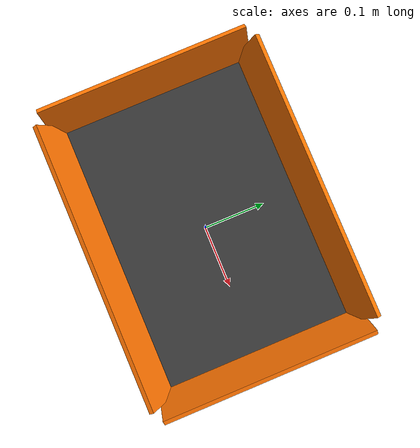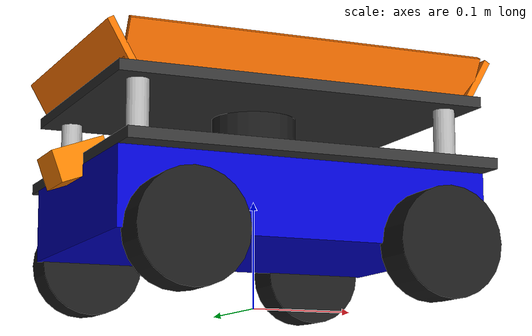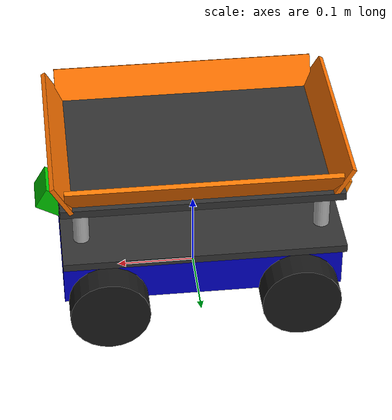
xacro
<?xml version="1.0"?>
<robot name="differential_drive_robot"
       xmlns:xacro="http://www.ros.org/wiki/xacro">

  <!-- ==================== PROPERTIES ==================== -->
  <xacro:property name="base_length" value="0.35"/>
  <xacro:property name="base_width"  value="0.25"/>
  <xacro:property name="base_height" value="0.07"/>
  <xacro:property name="base_mass"   value="5.0"/>

  <xacro:property name="wheel_radius" value="0.05"/>
  <xacro:property name="wheel_width"  value="0.04"/>
  <xacro:property name="wheel_mass"   value="0.5"/>

  <xacro:property name="caster_radius" value="0.025"/>
  <xacro:property name="caster_mass"   value="0.1"/>

  <xacro:property name="lidar_radius" value="0.04"/>
  <xacro:property name="lidar_height" value="0.05"/>
  <xacro:property name="lidar_mass"   value="0.2"/>

  <!-- Standoffs: 4 cylinders at cover_plate corners holding up standoff_floor -->
  <xacro:property name="standoff_height" value="0.052"/>
  <xacro:property name="standoff_radius" value="0.01"/>
  <xacro:property name="standoff_mass"   value="0.075"/>

  <!-- Standoff floor: same footprint as base, thin plate above standoffs -->
  <xacro:property name="standoff_floor_length" value="0.35"/>
  <xacro:property name="standoff_floor_width"  value="0.25"/>
  <xacro:property name="standoff_floor_height" value="0.01"/>
  <xacro:property name="standoff_floor_mass"   value="0.3"/>

  <xacro:property name="tray_wall_h"    value="0.045"/>
  <xacro:property name="tray_wall_t"    value="0.006"/>
  <xacro:property name="tray_wall_mass" value="0.02"/>

  <!-- ==================== INERTIA MACROS ==================== -->
  <xacro:macro name="box_inertia" params="m x y z">
    <inertial>
      <origin xyz="0 0 0" rpy="0 0 0"/>
      <mass value="${m}"/>
      <inertia
        ixx="${(1/12)*m*(y*y+z*z)}"
        ixy="0" ixz="0"
        iyy="${(1/12)*m*(x*x+z*z)}"
        iyz="0"
        izz="${(1/12)*m*(x*x+y*y)}"/>
    </inertial>
  </xacro:macro>

  <xacro:macro name="cylinder_inertia" params="m r h">
    <inertial>
      <origin xyz="0 0 0" rpy="0 0 0"/>
      <mass value="${m}"/>
      <inertia
        ixx="${(1/12)*m*(3*r*r+h*h)}"
        ixy="0" ixz="0"
        iyy="${(1/12)*m*(3*r*r+h*h)}"
        iyz="0"
        izz="${(1/2)*m*r*r}"/>
    </inertial>
  </xacro:macro>

  <xacro:macro name="sphere_inertia" params="m r">
    <inertial>
      <origin xyz="0 0 0" rpy="0 0 0"/>
      <mass value="${m}"/>
      <inertia
        ixx="${(2/5)*m*r*r}"
        ixy="0" ixz="0"
        iyy="${(2/5)*m*r*r}"
        iyz="0"
        izz="${(2/5)*m*r*r}"/>
    </inertial>
  </xacro:macro>

  <!-- ==================== WHEEL MACRO ==================== -->
  <xacro:macro name="wheel" params="name x_offset y_offset">
    <link name="${name}_wheel">
      <visual>
        <origin xyz="0 0 0" rpy="0 0 0"/>
        <geometry>
          <cylinder radius="${wheel_radius}" length="${wheel_width}"/>
        </geometry>
        <material name="black">
          <color rgba="0.1 0.1 0.1 1"/>
        </material>
      </visual>
      <collision>
        <origin xyz="0 0 0" rpy="0 0 0"/>
        <geometry>
          <cylinder radius="${wheel_radius}" length="${wheel_width}"/>
        </geometry>
      </collision>
      <xacro:cylinder_inertia m="${wheel_mass}"
                              r="${wheel_radius}"
                              h="${wheel_width}"/>
    </link>

    <joint name="${name}_wheel_joint" type="continuous">
      <parent link="base_link"/>
      <child link="${name}_wheel"/>
      <origin xyz="${x_offset} ${y_offset} -0.035" rpy="-1.5707 0 0"/>
      <axis xyz="0 0 1"/>
      <dynamics damping="0.001" friction="0.0"/>
    </joint>

    <gazebo reference="${name}_wheel">
      <mu1>1.1</mu1>
      <mu2>0.05</mu2>
      <fdir1>1 0 0</fdir1>
      <kp>100000.0</kp>
      <kd>10.0</kd>
    </gazebo>
  </xacro:macro>

  <xacro:macro name="standoff" params="name x_offset y_offset">
    <link name="${name}_standoff">
      <visual>
        <origin xyz="0 0 0" rpy="0 0 0"/>
        <geometry>
          <cylinder radius="${standoff_radius}" length="${standoff_height}"/>
        </geometry>
        <material name="silver">
          <color rgba="0.7 0.7 0.7 1"/>
        </material>
      </visual>
      <collision>
        <origin xyz="0 0 0" rpy="0 0 0"/>
        <geometry>
          <cylinder radius="${standoff_radius}" length="${standoff_height}"/>
        </geometry>
      </collision>
      <xacro:cylinder_inertia m="${standoff_mass}"
                              r="${standoff_radius}"
                              h="${standoff_height}"/>
    </link>

    <!-- Parent: cover_plate. z offset = plate_half_h + standoff_half_h -->
    <joint name="${name}_standoff_joint" type="fixed">
      <parent link="cover_plate"/>
      <child link="${name}_standoff"/>
      <origin xyz="${x_offset} ${y_offset} ${0.005 + standoff_height/2}" rpy="0 0 0"/>
    </joint>
  </xacro:macro>

  <xacro:macro name="tray_wall" params="name wx wy x_off y_off rpy">
    <link name="tray_wall_${name}">
      <visual>
        <origin xyz="0 0 0" rpy="0 0 0"/>
        <geometry>
          <box size="${wx} ${wy} ${tray_wall_h}"/>
        </geometry>
        <material name="orange_tray">
          <color rgba="1.0 0.45 0.0 1"/>
        </material>
      </visual>
      <collision>
        <origin xyz="0 0 0" rpy="0 0 0"/>
        <geometry>
          <box size="${wx} ${wy} ${tray_wall_h}"/>
        </geometry>
      </collision>
      <xacro:box_inertia m="${tray_wall_mass}" x="${wx}" y="${wy}" z="${tray_wall_h}"/>
    </link>
    <joint name="tray_wall_${name}_joint" type="fixed">
      <parent link="standoff_floor"/>
      <child  link="tray_wall_${name}"/>
      <!-- z: sfp_half_h + wall_half_h = 0.005 + 0.015 = 0.020 -->
      <origin xyz="${x_off} ${y_off} 0.020" rpy="${rpy}"/>
    </joint>
  </xacro:macro>

  <!-- ==================== BASE FOOTPRINT ==================== -->

  <link name="base_footprint"/>

  <joint name="base_footprint_joint" type="fixed">
    <parent link="base_footprint"/>
    <child link="base_link"/>
    <origin xyz="0 0 0.085" rpy="0 0 0"/>
  </joint>

  <!-- ==================== BASE LINK ==================== -->
  <link name="base_link">
    <visual>
      <origin xyz="0 0 0" rpy="0 0 0"/>
      <geometry>
        <box size="${base_length} ${base_width} ${base_height}"/>
      </geometry>
      <material name="blue">
        <color rgba="0 0 0.8 1"/>
      </material>
    </visual>
    <collision>
      <origin xyz="0 0 0" rpy="0 0 0"/>
      <geometry>
        <box size="${base_length} ${base_width} ${base_height}"/>
      </geometry>
    </collision>
    <xacro:box_inertia m="${base_mass}"
                       x="${base_length}"
                       y="${base_width}"
                       z="${base_height}"/>
  </link>

  <!-- ==================== WHEELS ==================== -->
  <xacro:wheel name="front_left"  x_offset="0.12"  y_offset="0.14"/>
  <xacro:wheel name="front_right" x_offset="0.12"  y_offset="-0.14"/>
  <xacro:wheel name="rear_left"   x_offset="-0.12" y_offset="0.14"/>
  <xacro:wheel name="rear_right"  x_offset="-0.12" y_offset="-0.14"/>

  <link name="cover_plate">
    <visual>
      <origin xyz="0 0 0" rpy="0 0 0"/>
      <geometry>
        <box size="0.35 0.30 0.01"/>
      </geometry>
      <material name="dark_grey">
        <color rgba="0.2 0.2 0.2 1"/>
      </material>
    </visual>
    <collision>
      <origin xyz="0 0 0" rpy="0 0 0"/>
      <geometry>
        <box size="0.35 0.30 0.01"/>
      </geometry>
    </collision>
    <xacro:box_inertia m="0.3" x="0.35" y="0.30" z="0.01"/>
  </link>

  <joint name="cover_plate_joint" type="fixed">
    <parent link="base_link"/>
    <child link="cover_plate"/>
    <!-- base_height/2 + cover_plate_height/2 = 0.035 + 0.005 = 0.040 -->
    <origin xyz="0 0 0.040" rpy="0 0 0"/>
  </joint>

  <xacro:standoff name="front_left"  x_offset=" 0.150" y_offset=" 0.100"/>
  <xacro:standoff name="front_right" x_offset=" 0.150" y_offset="-0.100"/>
  <xacro:standoff name="rear_left"   x_offset="-0.150" y_offset=" 0.100"/>
  <xacro:standoff name="rear_right"  x_offset="-0.150" y_offset="-0.100"/>

  <link name="standoff_floor">
    <visual>
      <origin xyz="0 0 0" rpy="0 0 0"/>
      <geometry>
        <box size="${standoff_floor_length} ${standoff_floor_width} ${standoff_floor_height}"/>
      </geometry>
      <material name="dark_grey">
        <color rgba="0.2 0.2 0.2 1"/>
      </material>
    </visual>
    <collision>
      <origin xyz="0 0 0" rpy="0 0 0"/>
      <geometry>
        <box size="${standoff_floor_length} ${standoff_floor_width} ${standoff_floor_height}"/>
      </geometry>
    </collision>
    <xacro:box_inertia m="${standoff_floor_mass}"
                       x="${standoff_floor_length}"
                       y="${standoff_floor_width}"
                       z="${standoff_floor_height}"/>
  </link>

  <joint name="standoff_floor_joint" type="fixed">
    <parent link="cover_plate"/>
    <child link="standoff_floor"/>
    <!-- cover_plate_half_h + standoff_height + floor_half_h
         = 0.005 + 0.052 + 0.005 = 0.062 -->
    <origin xyz="0 0 0.062" rpy="0 0 0"/>
  </joint>

  <!-- Front wall: spans full Y width, sits at +X edge, top tilts outward (+X) -->
  <xacro:tray_wall name="front"
    wx="${tray_wall_t}"
    wy="${standoff_floor_width}"
    x_off="${standoff_floor_length/2 - tray_wall_t/2}"
    y_off="0"
    rpy="0 0.5236 0"/>

  <!-- Rear wall: spans full Y width, sits at -X edge, top tilts outward (-X) -->
  <xacro:tray_wall name="rear"
    wx="${tray_wall_t}"
    wy="${standoff_floor_width}"
    x_off="${-(standoff_floor_length/2 - tray_wall_t/2)}"
    y_off="0"
    rpy="0 -0.5236 0"/>

  <!-- Left wall: inner X span, sits at +Y edge, top tilts outward (+Y) -->
  <xacro:tray_wall name="left"
    wx="${standoff_floor_length - 2*tray_wall_t}"
    wy="${tray_wall_t}"
    x_off="0"
    y_off="${standoff_floor_width/2 - tray_wall_t/2}"
    rpy="-0.5236 0 0"/>

  <!-- Right wall: inner X span, sits at -Y edge, top tilts outward (-Y) -->
  <xacro:tray_wall name="right"
    wx="${standoff_floor_length - 2*tray_wall_t}"
    wy="${tray_wall_t}"
    x_off="0"
    y_off="${-(standoff_floor_width/2 - tray_wall_t/2)}"
    rpy="0.5236 0 0"/>

  <link name="lidar_link">
    <visual>
      <origin xyz="0 0 0" rpy="0 0 0"/>
      <geometry>
        <cylinder radius="${lidar_radius}" length="${lidar_height}"/>
      </geometry>
      <material name="black">
        <color rgba="0.1 0.1 0.1 1"/>
      </material>
    </visual>
    <collision>
      <origin xyz="0 0 0" rpy="0 0 0"/>
      <geometry>
        <cylinder radius="${lidar_radius}" length="${lidar_height}"/>
      </geometry>
    </collision>
    <xacro:cylinder_inertia m="${lidar_mass}"
                            r="${lidar_radius}"
                            h="${lidar_height}"/>
  </link>

  <joint name="lidar_joint" type="fixed">
    <parent link="cover_plate"/>
    <child link="lidar_link"/>
    <!-- cover_plate_half_h + lidar_half_h = 0.005 + 0.025 = 0.030 -->
    <origin xyz="0.0 0 0.030" rpy="0 0 0"/>
  </joint>

  <!-- ==================== CAMERA FRONT ====================
       Faces forward (+X), tilted down 30° to see floor/markers on approach.
       Topic: /camera/front/image_raw
  -->
  <link name="camera_link_1">
    <visual>
      <origin xyz="0 0 0" rpy="0 0 0"/>
      <geometry>
        <box size="0.05 0.05 0.03"/>
      </geometry>
      <material name="green">
        <color rgba="0 0.8 0 1"/>
      </material>
    </visual>
    <collision>
      <origin xyz="0 0 0" rpy="0 0 0"/>
      <geometry>
        <box size="0.05 0.05 0.03"/>
      </geometry>
    </collision>
    <xacro:box_inertia m="0.1" x="0.05" y="0.05" z="0.03"/>
  </link>

  <joint name="camera_joint_1" type="fixed">
    <parent link="base_link"/>
    <child link="camera_link_1"/>
    <!-- Front face of robot (base_length/2=0.175), same height as cover_plate top -->
    <origin xyz="0.175 0 0.04" rpy="0 -0.523 0"/>
  </joint>

  <link name="camera_link_2">
    <visual>
      <origin xyz="0 0 0" rpy="0 0 0"/>
      <geometry>
        <box size="0.05 0.05 0.03"/>
      </geometry>
      <material name="orange">
        <color rgba="1.0 0.5 0.0 1"/>
      </material>
    </visual>
    <collision>
      <origin xyz="0 0 0" rpy="0 0 0"/>
      <geometry>
        <box size="0.05 0.05 0.03"/>
      </geometry>
    </collision>
    <xacro:box_inertia m="0.1" x="0.05" y="0.05" z="0.03"/>
  </link>

  <joint name="camera_joint_2" type="fixed">
    <parent link="base_link"/>
    <child link="camera_link_2"/>
    <!-- Rear face of robot (x=-0.175), yaw=π faces backward, pitch=+0.349 tilts down ~20° -->
    <origin xyz="-0.175 0 0.04" rpy="0 0.349 3.14159"/>
  </joint>

<gazebo>
  <plugin filename="gz-sim-diff-drive-system" name="gz::sim::systems::DiffDrive">
    <left_joint>front_left_wheel_joint</left_joint>
    <left_joint>rear_left_wheel_joint</left_joint>
    <right_joint>front_right_wheel_joint</right_joint>
    <right_joint>rear_right_wheel_joint</right_joint>
    <wheel_separation>0.28</wheel_separation>
    <wheel_radius>0.05</wheel_radius>
    <topic>/model/my_robot/cmd_vel</topic>
    <odom_publish_frequency>0</odom_publish_frequency>
    <odom_topic>/model/my_robot/diff_drive_unused_odom</odom_topic>
    <tf_topic>/model/my_robot/diff_drive_unused_tf</tf_topic>
  </plugin>
  <plugin filename="gz-sim-odometry-publisher-system" name="gz::sim::systems::OdometryPublisher">
    <odom_frame>odom</odom_frame>
    <robot_base_frame>base_footprint</robot_base_frame>
    <odom_topic>/model/my_robot/odometry</odom_topic>
    <odom_publish_frequency>20</odom_publish_frequency>
    <dimensions>2</dimensions>
  </plugin>
  <plugin filename="gz-sim-joint-state-publisher-system" name="gz::sim::systems::JointStatePublisher">
    <update_rate>20</update_rate>
    <topic>/joint_states</topic>
    <joint_name>front_left_wheel_joint</joint_name>
    <joint_name>front_right_wheel_joint</joint_name>
    <joint_name>rear_left_wheel_joint</joint_name>
    <joint_name>rear_right_wheel_joint</joint_name>
  </plugin>
</gazebo>

<gazebo reference="lidar_link">
  <sensor name="lidar" type="gpu_lidar">
    <topic>/scan</topic>
    <update_rate>10</update_rate>
    <gz_frame_id>lidar_link</gz_frame_id>
    <frame_id>lidar_link</frame_id>
    <ignition_frame_id>lidar_link</ignition_frame_id>
    <lidar>
      <scan>
        <horizontal>
          <samples>360</samples>
          <resolution>1</resolution>
          <min_angle>-3.14159</min_angle>
          <max_angle>3.14159</max_angle>
        </horizontal>
      </scan>
      <range>
        <min>0.25</min>
        <max>10.0</max>
        <resolution>0.01</resolution>
      </range>
    </lidar>
    <always_on>1</always_on>
    <visualize>true</visualize>
  </sensor>
</gazebo>

<gazebo reference="base_link">
  <sensor name="imu_sensor" type="imu">
    <always_on>1</always_on>
    <update_rate>100</update_rate>
    <topic>/imu</topic>
    <gz_frame_id>base_link</gz_frame_id>
    <frame_id>base_link</frame_id>
    <ignition_frame_id>base_link</ignition_frame_id>
    <visualize>true</visualize>
  </sensor>
</gazebo>

<gazebo reference="camera_link_1">
  <sensor name="camera_front" type="camera">
    <topic>/camera/front/image_raw</topic>
    <gz_frame_id>camera_link_1</gz_frame_id>
    <frame_id>camera_link_1</frame_id>
    <ignition_frame_id>camera_link_1</ignition_frame_id>
    <update_rate>30</update_rate>
    <camera>
      <horizontal_fov>1.3962634</horizontal_fov>
      <image>
        <width>640</width>
        <height>480</height>
        <format>R8G8B8</format>
      </image>
      <clip>
        <near>0.02</near>
        <far>300</far>
      </clip>
    </camera>
    <always_on>1</always_on>
    <visualize>true</visualize>
  </sensor>
</gazebo>

<gazebo reference="camera_link_2">
  <sensor name="camera_rear" type="camera">
    <topic>/camera/rear/image_raw</topic>
    <gz_frame_id>camera_link_2</gz_frame_id>
    <frame_id>camera_link_2</frame_id>
    <ignition_frame_id>camera_link_2</ignition_frame_id>
    <update_rate>30</update_rate>
    <camera>
      <horizontal_fov>1.3962634</horizontal_fov>
      <image>
        <width>640</width>
        <height>480</height>
        <format>R8G8B8</format>
      </image>
      <clip>
        <near>0.02</near>
        <far>300</far>
      </clip>
    </camera>
    <always_on>1</always_on>
    <visualize>true</visualize>
  </sensor>
</gazebo>

</robot>
